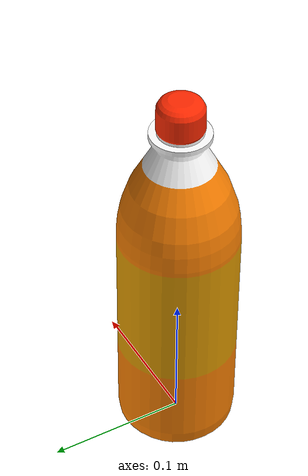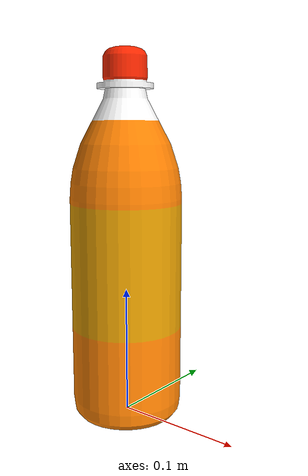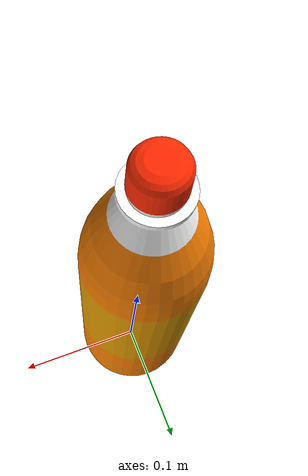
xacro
<robot name="bottle_2_fanta">
    <link name="bottle_2_fanta">
        <inertial>
            <origin xyz="0 0 0" rpy="0 0 0"/>
            <mass value="1"/>
            <inertia ixx="1" ixy="0" ixz="0" iyy="1" iyz="0" izz="1"/>
        </inertial>
        <visual>
            <origin xyz="0 0 0" rpy="0 0 0"/>
            <geometry>
                <mesh filename="package://tiago_bartender_world/meshes/bottle_2_fanta.dae"/>
            </geometry>
        </visual>
        <collision>
            <origin xyz="0 0 0" rpy="0 0 0"/>
            <geometry>
                <mesh filename="package://tiago_bartender_world/meshes/bottle_2_fanta.dae"/>
            </geometry>
        </collision>
    </link>
    <gazebo reference="bottle_2_fanta">
        <mu1>1.0</mu1>
        <mu2>1.0</mu2>
    </gazebo>
</robot>
